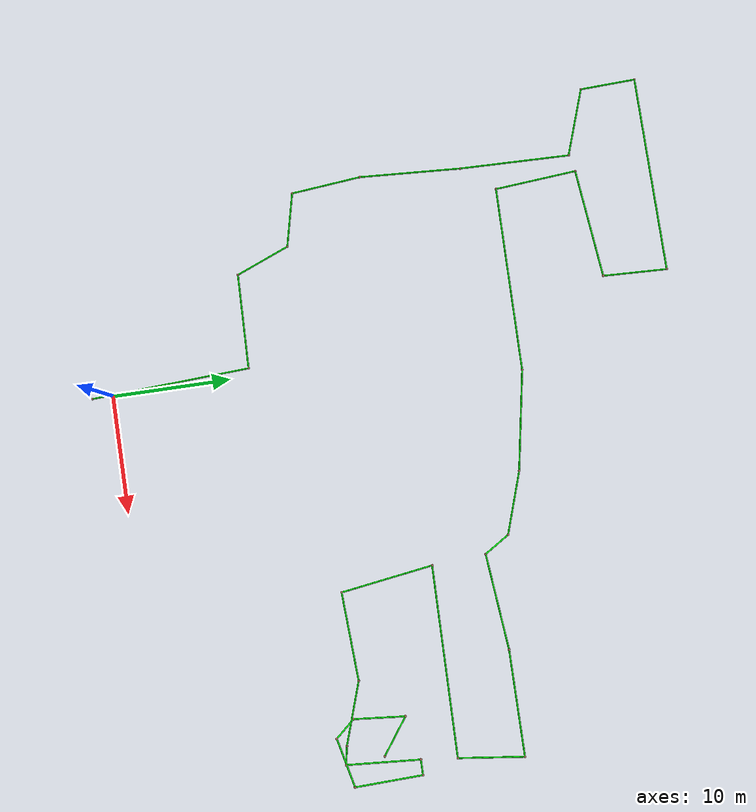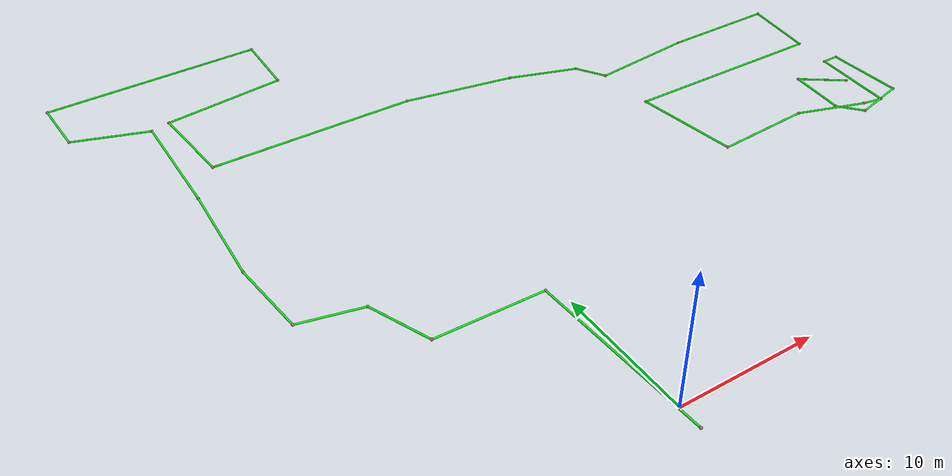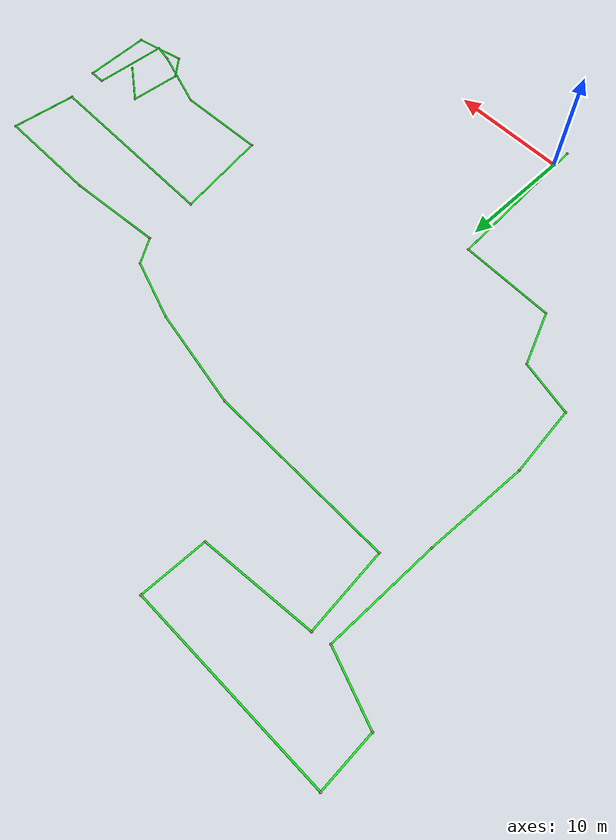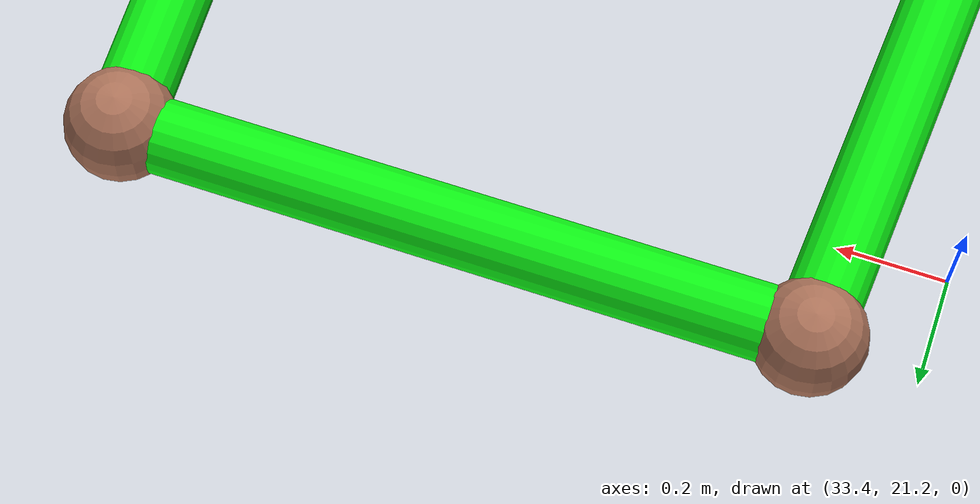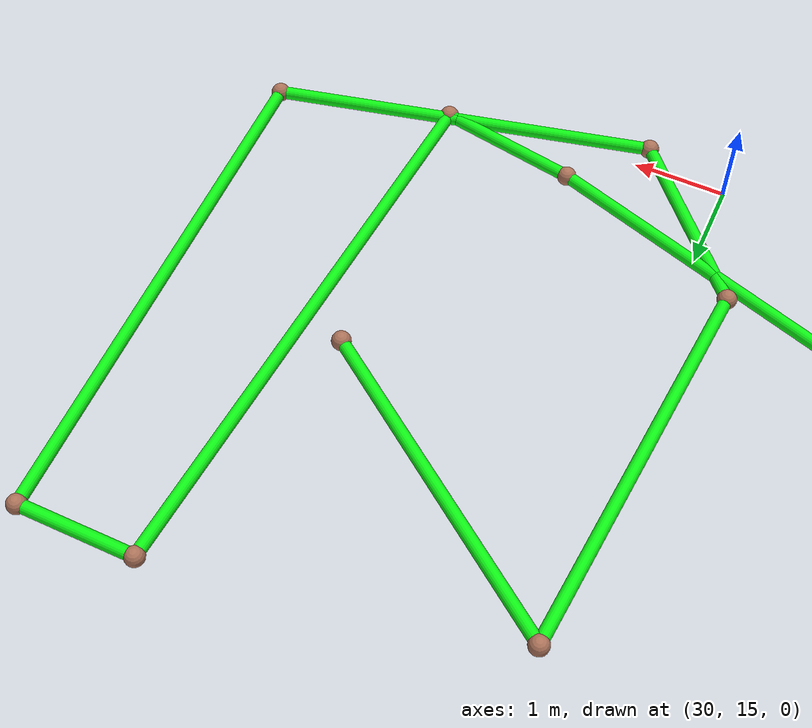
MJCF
<mujoco model="new_wp30_flat_full_overlay">
  <worldbody>
    <body name="new_wp30_overlay">
      <geom name="nwp_segment_000" type="capsule" fromto="0.0000 -1.7250 0.0000 -0.7125 11.6550 0.0000" size="0.0700" rgba="0.05 0.95 0.08 1" contype="0" conaffinity="0" group="2"/>
      <geom name="nwp_segment_001" type="capsule" fromto="-0.7125 11.6550 0.0000 -8.7300 11.8425 0.0000" size="0.0700" rgba="0.05 0.95 0.08 1" contype="0" conaffinity="0" group="2"/>
      <geom name="nwp_segment_002" type="capsule" fromto="-8.7300 11.8425 0.0000 -10.5375 16.3275 0.0000" size="0.0700" rgba="0.05 0.95 0.08 1" contype="0" conaffinity="0" group="2"/>
      <geom name="nwp_segment_003" type="capsule" fromto="-10.5375 16.3275 0.0000 -15.0225 17.3700 0.0000" size="0.0700" rgba="0.05 0.95 0.08 1" contype="0" conaffinity="0" group="2"/>
      <geom name="nwp_segment_004" type="capsule" fromto="-15.0225 17.3700 0.0000 -15.6000 23.2800 0.0000" size="0.0700" rgba="0.05 0.95 0.08 1" contype="0" conaffinity="0" group="2"/>
      <geom name="nwp_segment_005" type="capsule" fromto="-15.6000 23.2800 0.0000 -15.1200 31.8600 0.0000" size="0.0700" rgba="0.05 0.95 0.08 1" contype="0" conaffinity="0" group="2"/>
      <geom name="nwp_segment_006" type="capsule" fromto="-15.1200 31.8600 0.0000 -14.9325 41.2050 0.0000" size="0.0700" rgba="0.05 0.95 0.08 1" contype="0" conaffinity="0" group="2"/>
      <geom name="nwp_segment_007" type="capsule" fromto="-14.9325 41.2050 0.0000 -20.4600 43.1100 0.0000" size="0.0700" rgba="0.05 0.95 0.08 1" contype="0" conaffinity="0" group="2"/>
      <geom name="nwp_segment_008" type="capsule" fromto="-20.4600 43.1100 0.0000 -20.6550 47.7825 0.0000" size="0.0700" rgba="0.05 0.95 0.08 1" contype="0" conaffinity="0" group="2"/>
      <geom name="nwp_segment_009" type="capsule" fromto="-20.6550 47.7825 0.0000 -4.0500 47.9700 0.0000" size="0.0700" rgba="0.05 0.95 0.08 1" contype="0" conaffinity="0" group="2"/>
      <geom name="nwp_segment_010" type="capsule" fromto="-4.0500 47.9700 0.0000 -4.2450 42.5400 0.0000" size="0.0700" rgba="0.05 0.95 0.08 1" contype="0" conaffinity="0" group="2"/>
      <geom name="nwp_segment_011" type="capsule" fromto="-4.2450 42.5400 0.0000 -13.5000 41.5500 0.0000" size="0.0700" rgba="0.05 0.95 0.08 1" contype="0" conaffinity="0" group="2"/>
      <geom name="nwp_segment_012" type="capsule" fromto="-13.5000 41.5500 0.0000 -12.9225 34.6275 0.0000" size="0.0700" rgba="0.05 0.95 0.08 1" contype="0" conaffinity="0" group="2"/>
      <geom name="nwp_segment_013" type="capsule" fromto="-12.9225 34.6275 0.0000 2.7225 34.5300 0.0000" size="0.0700" rgba="0.05 0.95 0.08 1" contype="0" conaffinity="0" group="2"/>
      <geom name="nwp_segment_014" type="capsule" fromto="2.7225 34.5300 0.0000 11.1225 33.0075 0.0000" size="0.0700" rgba="0.05 0.95 0.08 1" contype="0" conaffinity="0" group="2"/>
      <geom name="nwp_segment_015" type="capsule" fromto="11.1225 33.0075 0.0000 16.2750 31.2900 0.0000" size="0.0700" rgba="0.05 0.95 0.08 1" contype="0" conaffinity="0" group="2"/>
      <geom name="nwp_segment_016" type="capsule" fromto="16.2750 31.2900 0.0000 17.6100 29.1900 0.0000" size="0.0700" rgba="0.05 0.95 0.08 1" contype="0" conaffinity="0" group="2"/>
      <geom name="nwp_segment_017" type="capsule" fromto="17.6100 29.1900 0.0000 25.7175 29.9550 0.0000" size="0.0700" rgba="0.05 0.95 0.08 1" contype="0" conaffinity="0" group="2"/>
      <geom name="nwp_segment_018" type="capsule" fromto="25.7175 29.9550 0.0000 34.5975 29.9550 0.0000" size="0.0700" rgba="0.05 0.95 0.08 1" contype="0" conaffinity="0" group="2"/>
      <geom name="nwp_segment_019" type="capsule" fromto="34.5975 29.9550 0.0000 33.9225 24.4275 0.0000" size="0.0700" rgba="0.05 0.95 0.08 1" contype="0" conaffinity="0" group="2"/>
      <geom name="nwp_segment_020" type="capsule" fromto="33.9225 24.4275 0.0000 17.8950 24.6150 0.0000" size="0.0700" rgba="0.05 0.95 0.08 1" contype="0" conaffinity="0" group="2"/>
      <geom name="nwp_segment_021" type="capsule" fromto="17.8950 24.6150 0.0000 19.0425 16.8000 0.0000" size="0.0700" rgba="0.05 0.95 0.08 1" contype="0" conaffinity="0" group="2"/>
      <geom name="nwp_segment_022" type="capsule" fromto="19.0425 16.8000 0.0000 26.4825 17.1825 0.0000" size="0.0700" rgba="0.05 0.95 0.08 1" contype="0" conaffinity="0" group="2"/>
      <geom name="nwp_segment_023" type="capsule" fromto="26.4825 17.1825 0.0000 31.6350 15.4650 0.0000" size="0.0700" rgba="0.05 0.95 0.08 1" contype="0" conaffinity="0" group="2"/>
      <geom name="nwp_segment_024" type="capsule" fromto="31.6350 15.4650 0.0000 33.1650 15.1800 0.0000" size="0.0700" rgba="0.05 0.95 0.08 1" contype="0" conaffinity="0" group="2"/>
      <geom name="nwp_segment_025" type="capsule" fromto="33.1650 15.1800 0.0000 33.6000 21.3750 0.0000" size="0.0700" rgba="0.05 0.95 0.08 1" contype="0" conaffinity="0" group="2"/>
      <geom name="nwp_segment_026" type="capsule" fromto="33.6000 21.3750 0.0000 34.8825 21.3750 0.0000" size="0.0700" rgba="0.05 0.95 0.08 1" contype="0" conaffinity="0" group="2"/>
      <geom name="nwp_segment_027" type="capsule" fromto="34.8825 21.3750 0.0000 35.0700 15.6600 0.0000" size="0.0700" rgba="0.05 0.95 0.08 1" contype="0" conaffinity="0" group="2"/>
      <geom name="nwp_segment_028" type="capsule" fromto="35.0700 15.6600 0.0000 30.9350 14.7150 0.0000" size="0.0700" rgba="0.05 0.95 0.08 1" contype="0" conaffinity="0" group="2"/>
      <geom name="nwp_segment_029" type="capsule" fromto="30.9350 14.7150 0.0000 29.5350 16.3275 0.0000" size="0.0700" rgba="0.05 0.95 0.08 1" contype="0" conaffinity="0" group="2"/>
      <geom name="nwp_segment_030" type="capsule" fromto="29.5350 16.3275 0.0000 29.9175 20.6175 0.0000" size="0.0700" rgba="0.05 0.95 0.08 1" contype="0" conaffinity="0" group="2"/>
      <geom name="nwp_segment_031" type="capsule" fromto="29.9175 20.6175 0.0000 32.9250 18.4500 0.0000" size="0.0700" rgba="0.05 0.95 0.08 1" contype="0" conaffinity="0" group="2"/>
      <geom name="track_waypoint_00_waypoint" type="sphere" pos="0.0000 -1.7250 0.0000" size="0.1050" rgba="0.674 0.450 0.352 1.000" contype="0" conaffinity="0" group="2"/>
      <geom name="track_waypoint_01_waypoint" type="sphere" pos="-0.7125 11.6550 0.0000" size="0.1050" rgba="0.674 0.450 0.352 1.000" contype="0" conaffinity="0" group="2"/>
      <geom name="track_waypoint_02_waypoint" type="sphere" pos="-8.7300 11.8425 0.0000" size="0.1050" rgba="0.674 0.450 0.352 1.000" contype="0" conaffinity="0" group="2"/>
      <geom name="track_waypoint_03_waypoint" type="sphere" pos="-10.5375 16.3275 0.0000" size="0.1050" rgba="0.674 0.450 0.352 1.000" contype="0" conaffinity="0" group="2"/>
      <geom name="track_waypoint_04_waypoint" type="sphere" pos="-15.0225 17.3700 0.0000" size="0.1050" rgba="0.674 0.450 0.352 1.000" contype="0" conaffinity="0" group="2"/>
      <geom name="track_waypoint_05_waypoint" type="sphere" pos="-15.6000 23.2800 0.0000" size="0.1050" rgba="0.674 0.450 0.352 1.000" contype="0" conaffinity="0" group="2"/>
      <geom name="track_waypoint_06_waypoint" type="sphere" pos="-15.1200 31.8600 0.0000" size="0.1050" rgba="0.674 0.450 0.352 1.000" contype="0" conaffinity="0" group="2"/>
      <geom name="track_waypoint_07_waypoint" type="sphere" pos="-14.9325 41.2050 0.0000" size="0.1050" rgba="0.674 0.450 0.352 1.000" contype="0" conaffinity="0" group="2"/>
      <geom name="track_waypoint_08_waypoint" type="sphere" pos="-20.4600 43.1100 0.0000" size="0.1050" rgba="0.674 0.450 0.352 1.000" contype="0" conaffinity="0" group="2"/>
      <geom name="track_waypoint_09_waypoint" type="sphere" pos="-20.6550 47.7825 0.0000" size="0.1050" rgba="0.674 0.450 0.352 1.000" contype="0" conaffinity="0" group="2"/>
      <geom name="track_waypoint_10_waypoint" type="sphere" pos="-4.0500 47.9700 0.0000" size="0.1050" rgba="0.674 0.450 0.352 1.000" contype="0" conaffinity="0" group="2"/>
      <geom name="track_waypoint_11_waypoint" type="sphere" pos="-4.2450 42.5400 0.0000" size="0.1050" rgba="0.674 0.450 0.352 1.000" contype="0" conaffinity="0" group="2"/>
      <geom name="track_waypoint_12_waypoint" type="sphere" pos="-13.5000 41.5500 0.0000" size="0.1050" rgba="0.674 0.450 0.352 1.000" contype="0" conaffinity="0" group="2"/>
      <geom name="track_waypoint_13_waypoint" type="sphere" pos="-12.9225 34.6275 0.0000" size="0.1050" rgba="0.674 0.450 0.352 1.000" contype="0" conaffinity="0" group="2"/>
      <geom name="track_waypoint_14_waypoint" type="sphere" pos="2.7225 34.5300 0.0000" size="0.1050" rgba="0.674 0.450 0.352 1.000" contype="0" conaffinity="0" group="2"/>
      <geom name="track_waypoint_15_waypoint" type="sphere" pos="11.1225 33.0075 0.0000" size="0.1050" rgba="0.674 0.450 0.352 1.000" contype="0" conaffinity="0" group="2"/>
      <geom name="track_waypoint_16_waypoint" type="sphere" pos="16.2750 31.2900 0.0000" size="0.1050" rgba="0.674 0.450 0.352 1.000" contype="0" conaffinity="0" group="2"/>
      <geom name="track_waypoint_17_waypoint" type="sphere" pos="17.6100 29.1900 0.0000" size="0.1050" rgba="0.674 0.450 0.352 1.000" contype="0" conaffinity="0" group="2"/>
      <geom name="track_waypoint_18_waypoint" type="sphere" pos="25.7175 29.9550 0.0000" size="0.1050" rgba="0.674 0.450 0.352 1.000" contype="0" conaffinity="0" group="2"/>
      <geom name="track_waypoint_19_waypoint" type="sphere" pos="34.5975 29.9550 0.0000" size="0.1050" rgba="0.674 0.450 0.352 1.000" contype="0" conaffinity="0" group="2"/>
      <geom name="track_waypoint_20_waypoint" type="sphere" pos="33.9225 24.4275 0.0000" size="0.1050" rgba="0.674 0.450 0.352 1.000" contype="0" conaffinity="0" group="2"/>
      <geom name="track_waypoint_21_waypoint" type="sphere" pos="17.8950 24.6150 0.0000" size="0.1050" rgba="0.674 0.450 0.352 1.000" contype="0" conaffinity="0" group="2"/>
      <geom name="track_waypoint_22_waypoint" type="sphere" pos="19.0425 16.8000 0.0000" size="0.1050" rgba="0.674 0.450 0.352 1.000" contype="0" conaffinity="0" group="2"/>
      <geom name="track_waypoint_23_waypoint" type="sphere" pos="26.4825 17.1825 0.0000" size="0.1050" rgba="0.674 0.450 0.352 1.000" contype="0" conaffinity="0" group="2"/>
      <geom name="track_waypoint_24_waypoint" type="sphere" pos="31.6350 15.4650 0.0000" size="0.1050" rgba="0.674 0.450 0.352 1.000" contype="0" conaffinity="0" group="2"/>
      <geom name="track_waypoint_25_waypoint" type="sphere" pos="33.1650 15.1800 0.0000" size="0.1050" rgba="0.674 0.450 0.352 1.000" contype="0" conaffinity="0" group="2"/>
      <geom name="track_waypoint_26_waypoint" type="sphere" pos="33.6000 21.3750 0.0000" size="0.1050" rgba="0.674 0.450 0.352 1.000" contype="0" conaffinity="0" group="2"/>
      <geom name="track_waypoint_27_waypoint" type="sphere" pos="34.8825 21.3750 0.0000" size="0.1050" rgba="0.674 0.450 0.352 1.000" contype="0" conaffinity="0" group="2"/>
      <geom name="track_waypoint_28_waypoint" type="sphere" pos="35.0700 15.6600 0.0000" size="0.1050" rgba="0.674 0.450 0.352 1.000" contype="0" conaffinity="0" group="2"/>
      <geom name="track_waypoint_29_waypoint" type="sphere" pos="30.9350 14.7150 0.0000" size="0.1050" rgba="0.674 0.450 0.352 1.000" contype="0" conaffinity="0" group="2"/>
      <geom name="track_waypoint_30_waypoint" type="sphere" pos="29.5350 16.3275 0.0000" size="0.1050" rgba="0.674 0.450 0.352 1.000" contype="0" conaffinity="0" group="2"/>
      <geom name="track_waypoint_31_waypoint" type="sphere" pos="29.9175 20.6175 0.0000" size="0.1050" rgba="0.674 0.450 0.352 1.000" contype="0" conaffinity="0" group="2"/>
      <geom name="track_waypoint_32_end" type="sphere" pos="32.9250 18.4500 0.0000" size="0.1050" rgba="0.674 0.450 0.352 1.000" contype="0" conaffinity="0" group="2"/>
    </body>
  </worldbody>
</mujoco>
